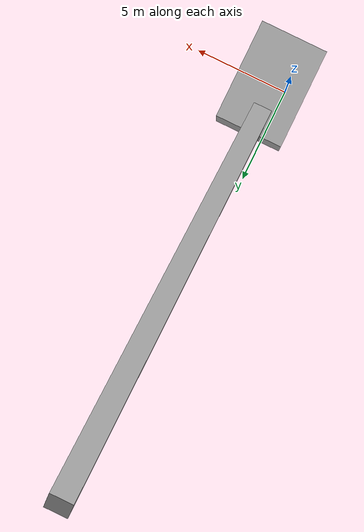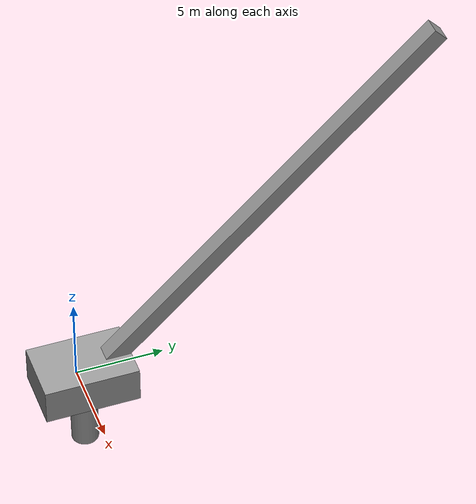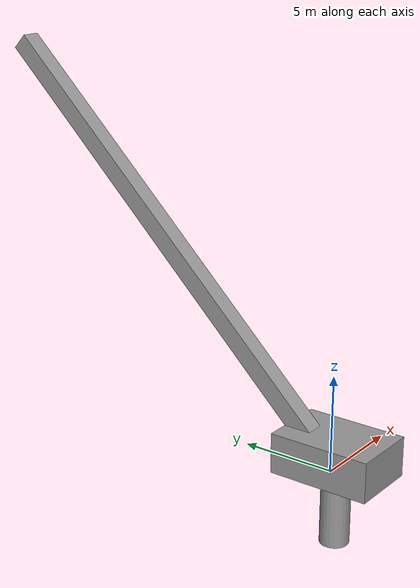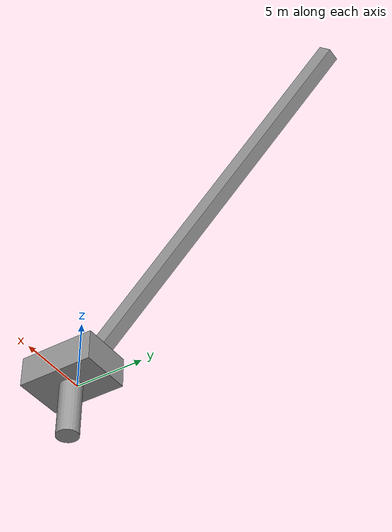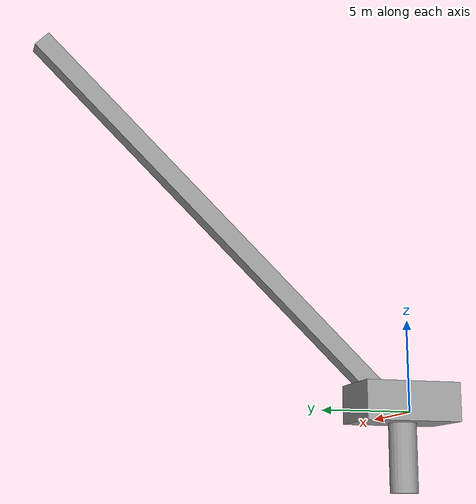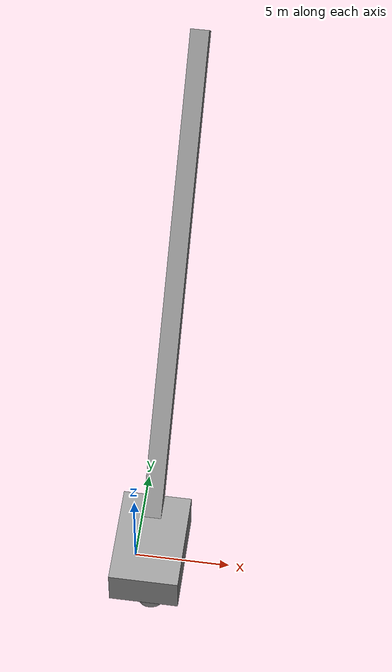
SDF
<?xml version='1.0'?>
<sdf version='1.6'>
  <model name='crane_5'>
    <link name='link'>
      <pose frame=''>0.774559 0.147623 0.548799 0 -0 0</pose>
      <inertial>
        <mass>1.48462</mass>
        <inertia>
          <ixx>4.13495</ixx>
          <ixy>0</ixy>
          <ixz>0</ixz>
          <iyy>2.19381</iyy>
          <iyz>0</iyz>
          <izz>5.22268</izz>
        </inertia>
        <pose frame=''>0 0 0 0 -0 0</pose>
      </inertial>
      <self_collide>0</self_collide>
      <kinematic>0</kinematic>
      <visual name='visual'>
        <geometry>
          <box>
            <size>3.64172 5.38071 2.11428</size>
          </box>
        </geometry>
        <material>
          <script>
            <name>Gazebo/Grey</name>
            <uri>file://media/materials/scripts/gazebo.material</uri>
          </script>
          <ambient>0.3 0.3 0.3 1</ambient>
          <diffuse>0.7 0.7 0.7 1</diffuse>
          <specular>0.01 0.01 0.01 1</specular>
          <emissive>0 0 0 1</emissive>
          <shader type='vertex'>
            <normal_map>__default__</normal_map>
          </shader>
        </material>
        <pose frame=''>0 0 0 0 -0 0</pose>
        <transparency>0</transparency>
        <cast_shadows>1</cast_shadows>
      </visual>
      <collision name='collision'>
        <laser_retro>0</laser_retro>
        <max_contacts>10</max_contacts>
        <pose frame=''>0 0 0 0 -0 0</pose>
        <geometry>
          <box>
            <size>3.64172 5.38071 2.11428</size>
          </box>
        </geometry>
        <surface>
          <friction>
            <ode>
              <mu>1</mu>
              <mu2>1</mu2>
              <fdir1>0 0 0</fdir1>
              <slip1>0</slip1>
              <slip2>0</slip2>
            </ode>
            <torsional>
              <coefficient>1</coefficient>
              <patch_radius>0</patch_radius>
              <surface_radius>0</surface_radius>
              <use_patch_radius>1</use_patch_radius>
              <ode>
                <slip>0</slip>
              </ode>
            </torsional>
          </friction>
          <bounce>
            <restitution_coefficient>0</restitution_coefficient>
            <threshold>1e+06</threshold>
          </bounce>
          <contact>
            <collide_without_contact>0</collide_without_contact>
            <collide_without_contact_bitmask>1</collide_without_contact_bitmask>
            <collide_bitmask>1</collide_bitmask>
            <ode>
              <soft_cfm>0</soft_cfm>
              <soft_erp>0.2</soft_erp>
              <kp>1e+13</kp>
              <kd>1</kd>
              <max_vel>0.01</max_vel>
              <min_depth>0</min_depth>
            </ode>
            <bullet>
              <split_impulse>1</split_impulse>
              <split_impulse_penetration_threshold>-0.01</split_impulse_penetration_threshold>
              <soft_cfm>0</soft_cfm>
              <soft_erp>0.2</soft_erp>
              <kp>1e+13</kp>
              <kd>1</kd>
            </bullet>
          </contact>
        </surface>
      </collision>
    </link>
    <link name='link_0'>
      <pose frame=''>0.763204 0.111335 -1.82829 0 -0.000149 0.000449</pose>
      <inertial>
        <mass>11.3104</mass>
        <inertia>
          <ixx>23.7068</ixx>
          <ixy>0</ixy>
          <ixz>0</ixz>
          <iyy>23.7068</iyy>
          <iyz>0</iyz>
          <izz>3.30577</izz>
        </inertia>
        <pose frame=''>0 0 0 0 -0 0</pose>
      </inertial>
      <self_collide>0</self_collide>
      <kinematic>0</kinematic>
      <visual name='visual'>
        <pose frame=''>0 0 0 0 -0 0</pose>
        <geometry>
          <cylinder>
            <radius>0.764561</radius>
            <length>4.83721</length>
          </cylinder>
        </geometry>
        <material>
          <lighting>1</lighting>
          <script>
            <uri>file://media/materials/scripts/gazebo.material</uri>
            <name>Gazebo/Grey</name>
          </script>
          <ambient>0.3 0.3 0.3 1</ambient>
          <diffuse>0.7 0.7 0.7 1</diffuse>
          <specular>0.01 0.01 0.01 1</specular>
          <emissive>0 0 0 1</emissive>
          <shader type='vertex'>
            <normal_map>__default__</normal_map>
          </shader>
        </material>
        <transparency>0</transparency>
        <cast_shadows>1</cast_shadows>
      </visual>
      <collision name='collision'>
        <laser_retro>0</laser_retro>
        <max_contacts>10</max_contacts>
        <pose frame=''>0 0 0 0 -0 0</pose>
        <geometry>
          <cylinder>
            <radius>0.764561</radius>
            <length>4.83721</length>
          </cylinder>
        </geometry>
        <surface>
          <friction>
            <ode>
              <mu>1</mu>
              <mu2>1</mu2>
              <fdir1>0 0 0</fdir1>
              <slip1>0</slip1>
              <slip2>0</slip2>
            </ode>
            <torsional>
              <coefficient>1</coefficient>
              <patch_radius>0</patch_radius>
              <surface_radius>0</surface_radius>
              <use_patch_radius>1</use_patch_radius>
              <ode>
                <slip>0</slip>
              </ode>
            </torsional>
          </friction>
          <bounce>
            <restitution_coefficient>0</restitution_coefficient>
            <threshold>1e+06</threshold>
          </bounce>
          <contact>
            <collide_without_contact>0</collide_without_contact>
            <collide_without_contact_bitmask>1</collide_without_contact_bitmask>
            <collide_bitmask>1</collide_bitmask>
            <ode>
              <soft_cfm>0</soft_cfm>
              <soft_erp>0.2</soft_erp>
              <kp>1e+13</kp>
              <kd>1</kd>
              <max_vel>0.01</max_vel>
              <min_depth>0</min_depth>
            </ode>
            <bullet>
              <split_impulse>1</split_impulse>
              <split_impulse_penetration_threshold>-0.01</split_impulse_penetration_threshold>
              <soft_cfm>0</soft_cfm>
              <soft_erp>0.2</soft_erp>
              <kp>1e+13</kp>
              <kd>1</kd>
            </bullet>
          </contact>
        </surface>
      </collision>
    </link>
    <link name='link_3'>
      <pose frame=''>0.652979 10.6805 9.87718 -0.803187 -0.000149 0.000449</pose>
      <inertial>
        <mass>26.724</mass>
        <inertia>
          <ixx>1592.68</ixx>
          <ixy>0</ixy>
          <ixz>0</ixz>
          <iyy>1592.68</iyy>
          <iyz>0</iyz>
          <izz>4.454</izz>
        </inertia>
        <pose frame=''>0 0 0 0 -0 0</pose>
      </inertial>
      <self_collide>0</self_collide>
      <kinematic>0</kinematic>
      <visual name='visual'>
        <pose frame=''>0 0 0 0 -0 0</pose>
        <geometry>
          <box>
            <size>1 1 26.7239</size>
          </box>
        </geometry>
        <material>
          <lighting>1</lighting>
          <script>
            <uri>file://media/materials/scripts/gazebo.material</uri>
            <name>Gazebo/Grey</name>
          </script>
          <ambient>0.3 0.3 0.3 1</ambient>
          <diffuse>0.7 0.7 0.7 1</diffuse>
          <specular>0.01 0.01 0.01 1</specular>
          <emissive>0 0 0 1</emissive>
        </material>
        <transparency>0</transparency>
        <cast_shadows>1</cast_shadows>
      </visual>
      <collision name='collision'>
        <laser_retro>0</laser_retro>
        <max_contacts>10</max_contacts>
        <pose frame=''>0 0 0 0 -0 0</pose>
        <geometry>
          <box>
            <size>1 1 26.7239</size>
          </box>
        </geometry>
        <surface>
          <friction>
            <ode>
              <mu>1</mu>
              <mu2>1</mu2>
              <fdir1>0 0 0</fdir1>
              <slip1>0</slip1>
              <slip2>0</slip2>
            </ode>
            <torsional>
              <coefficient>1</coefficient>
              <patch_radius>0</patch_radius>
              <surface_radius>0</surface_radius>
              <use_patch_radius>1</use_patch_radius>
              <ode>
                <slip>0</slip>
              </ode>
            </torsional>
          </friction>
          <bounce>
            <restitution_coefficient>0</restitution_coefficient>
            <threshold>1e+06</threshold>
          </bounce>
          <contact>
            <collide_without_contact>0</collide_without_contact>
            <collide_without_contact_bitmask>1</collide_without_contact_bitmask>
            <collide_bitmask>1</collide_bitmask>
            <ode>
              <soft_cfm>0</soft_cfm>
              <soft_erp>0.2</soft_erp>
              <kp>1e+13</kp>
              <kd>1</kd>
              <max_vel>0.01</max_vel>
              <min_depth>0</min_depth>
            </ode>
            <bullet>
              <split_impulse>1</split_impulse>
              <split_impulse_penetration_threshold>-0.01</split_impulse_penetration_threshold>
              <soft_cfm>0</soft_cfm>
              <soft_erp>0.2</soft_erp>
              <kp>1e+13</kp>
              <kd>1</kd>
            </bullet>
          </contact>
        </surface>
      </collision>
    </link>
    <static>1</static>
    <allow_auto_disable>1</allow_auto_disable>
  </model>
</sdf>
